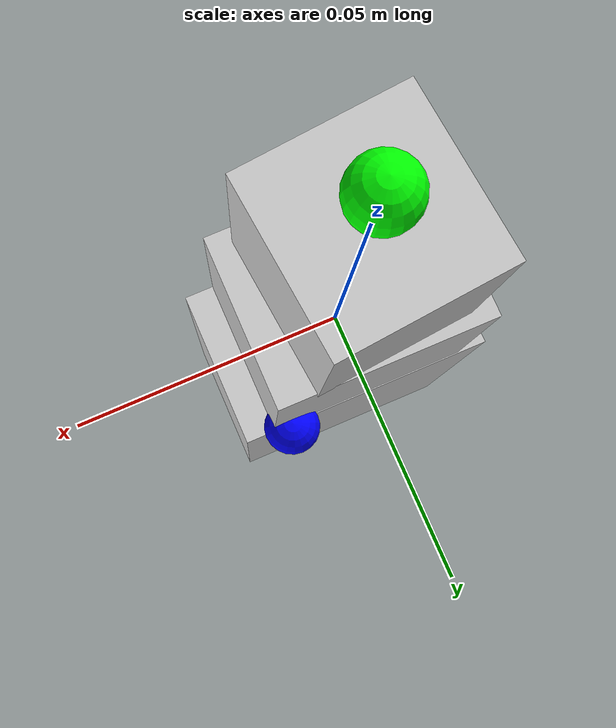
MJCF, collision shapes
<mujoco model="bbq_sauce">
  <asset>
  <texture file="texture_map.png" name="tex-bbq_sauce" type="2d" />
  <material name="bbq_sauce" reflectance="0.5" texrepeat="1 1" texture="tex-bbq_sauce" texuniform="false" />
  <mesh file="visual/bbq_sauce_vis.msh" name="bbq_sauce_vis" scale="0.0077 0.0077 0.0077" /></asset>
  <worldbody>
    <body>
      <body name="object">
        <geom solimp="0.998 0.998 0.001" solref="0.001 1" density="100" friction="0.95 0.3 0.1" type="mesh" mesh="bbq_sauce_vis" conaffinity="0" contype="0" group="1" material="bbq_sauce" />
        <geom solimp="0.998 0.998 0.001" solref="0.001 1" density="100" friction="0.95 0.3 0.1" type="box" pos="0.00000 0.00000 -0.02782" quat="0.00000 0.00530 0.00530 0.00000" size="0.01447 0.02349 0.02682" group="0" rgba="0.8 0.8 0.8 0." />
        <geom solimp="0.998 0.998 0.001" solref="0.001 1" density="100" friction="0.95 0.3 0.1" type="box" pos="-0.00000 -0.00000 0.01233" quat="0.00375 0.00375 -0.00375 -0.00375" size="0.01428 0.01459 0.01810" group="0" rgba="0.8 0.8 0.8 0." />
        <geom solimp="0.998 0.998 0.001" solref="0.001 1" density="100" friction="0.95 0.3 0.1" type="box" pos="-0.00000 -0.00000 0.03910" quat="0.00000 -0.00036 0.00749 -0.00000" size="0.01310 0.01336 0.01336" group="0" rgba="0.8 0.8 0.8 0." />
      </body>
      <site rgba="1 0 0 1" size="0.005" pos="0 0 -0.06" name="bottom_site" />
      <site rgba="0 1 0 1" size="0.005" pos="0 0 0.06" name="top_site" />
      <site rgba="0 0 1 1" size="0.005" pos="0.015 0.015 0" name="horizontal_radius_site" />
    </body>
  </worldbody>
</mujoco>
